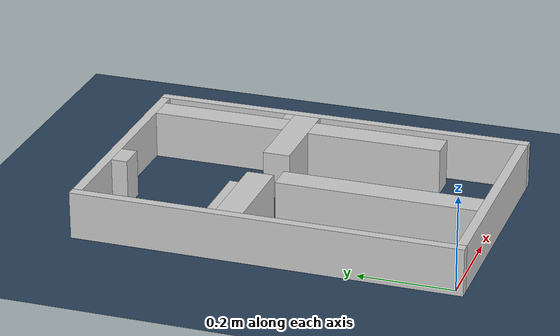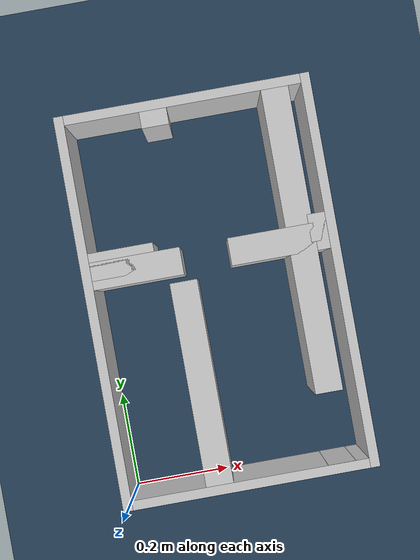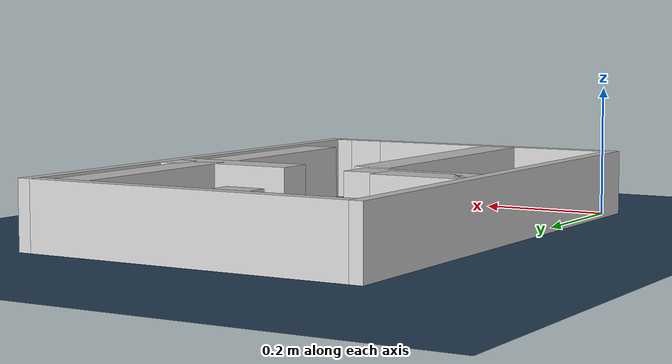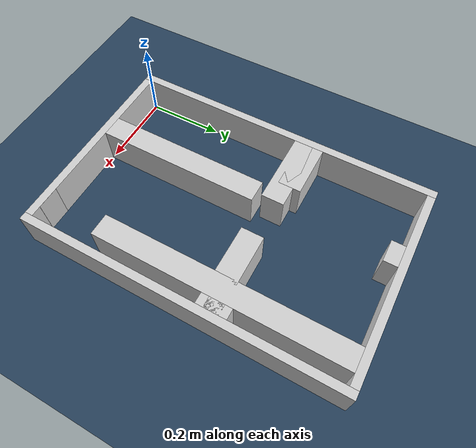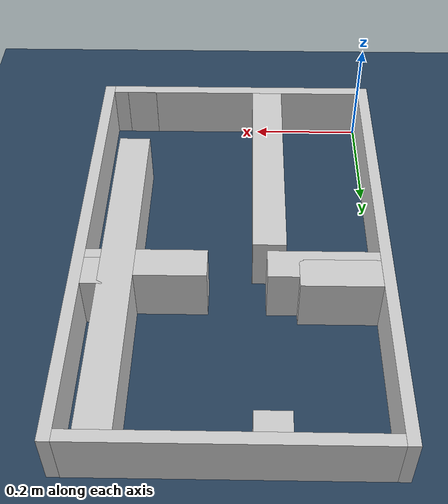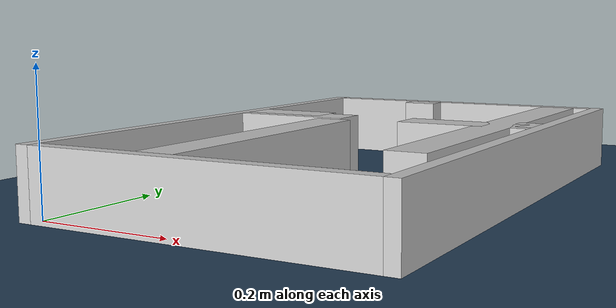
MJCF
<?xml version="1.0" ?>
<mujoco model="generated_real_template">
  <compiler angle="degree"/>
  <option timestep="0.002" integrator="implicitfast" iterations="100" cone="elliptic"/>
  <default>
    <geom density="1"/>
  </default>
  <asset>
    <texture builtin="gradient" height="3072" rgb1="0.3 0.5 0.7" rgb2="0 0 0" type="skybox" width="512"/>
    <texture builtin="checker" height="300" mark="edge" markrgb="0.8 0.8 0.8" name="groundplane" rgb1="0.2 0.3 0.4" rgb2="0.1 0.2 0.3" type="2d" width="300"/>
    <material name="groundplane" reflectance="0.2" texrepeat="5 5" texture="groundplane" texuniform="true"/>
  </asset>
  <worldbody>
    <light dir="0 0 -1" directional="true" pos="0 0 1.5"/>
    <geom name="floor" type="plane" condim="4" friction="0.5 0.005 0.001" material="groundplane" size="0 0 0.05"/>
    <body name="walls">
      <geom name="wall_boundary_left" type="box" condim="4" friction="1.0 0.005 0.0001" rgba="0.8 0.8 0.8 1" pos="-0.010000 0.387500 0.050000" euler="0 0 0.000000" size="0.010000 0.407500 0.050000"/>
      <geom name="wall_boundary_right" type="box" condim="4" friction="1.0 0.005 0.0001" rgba="0.8 0.8 0.8 1" pos="0.500000 0.387500 0.050000" euler="0 0 0.000000" size="0.010000 0.407500 0.050000"/>
      <geom name="wall_boundary_bottom" type="box" condim="4" friction="1.0 0.005 0.0001" rgba="0.8 0.8 0.8 1" pos="0.245000 -0.010000 0.050000" euler="0 0 0.000000" size="0.245000 0.010000 0.050000"/>
      <geom name="wall_boundary_top" type="box" condim="4" friction="1.0 0.005 0.0001" rgba="0.8 0.8 0.8 1" pos="0.245000 0.785000 0.050000" euler="0 0 0.000000" size="0.245000 0.010000 0.050000"/>
      <geom name="wall_inner_1_1" type="box" condim="4" friction="1.0 0.005 0.0001" rgba="0.8 0.8 0.8 1" pos="0.182490 0.210129 0.050000" euler="0 0 90.000000" size="0.210129 0.028500 0.050000"/>
      <geom name="wall_inner_1_2" type="box" condim="4" friction="1.0 0.005 0.0001" rgba="0.8 0.8 0.8 1" pos="0.182490 0.757886 0.050000" euler="0 0 90.000000" size="0.017114 0.028500 0.050000"/>
      <geom name="wall_inner_2_1" type="box" condim="4" friction="1.0 0.005 0.0001" rgba="0.8 0.8 0.8 1" pos="0.434621 0.000134 0.050000" euler="0 0 90.000000" size="0.000134 0.028500 0.050000"/>
      <geom name="wall_inner_2_2" type="box" condim="4" friction="1.0 0.005 0.0001" rgba="0.8 0.8 0.8 1" pos="0.434621 0.460500 0.050000" euler="0 0 90.000000" size="0.314500 0.028500 0.050000"/>
      <geom name="wall_inner_3_1" type="box" condim="4" friction="1.0 0.005 0.0001" rgba="0.8 0.8 0.8 1" pos="0.093534 0.462162 0.050000" euler="0 0 0.000000" size="0.093534 0.028500 0.050000"/>
      <geom name="wall_inner_3_2" type="box" condim="4" friction="1.0 0.005 0.0001" rgba="0.8 0.8 0.8 1" pos="0.387809 0.462162 0.050000" euler="0 0 0.000000" size="0.102191 0.028500 0.050000"/>
      <geom name="wall_inner_4_1" type="box" condim="4" friction="1.0 0.005 0.0001" rgba="0.8 0.8 0.8 1" pos="0.067426 0.480927 0.050000" euler="0 0 0.000000" size="0.067426 0.028500 0.050000"/>
      <geom name="wall_inner_4_2" type="box" condim="4" friction="1.0 0.005 0.0001" rgba="0.8 0.8 0.8 1" pos="0.471693 0.480927 0.050000" euler="0 0 0.000000" size="0.018307 0.028500 0.050000"/>
    </body>
  </worldbody>
</mujoco>
